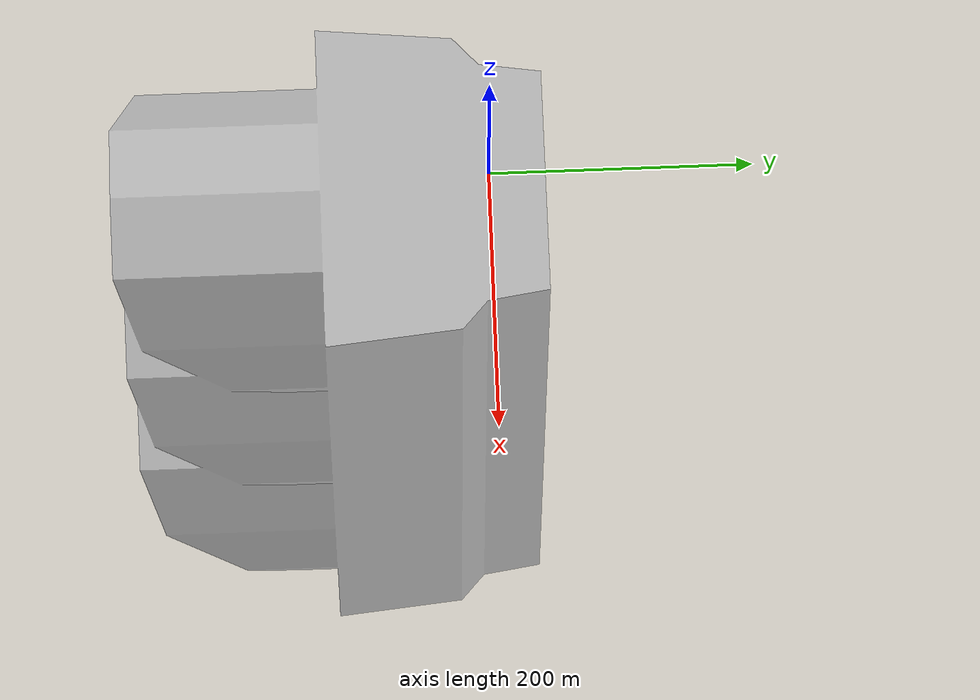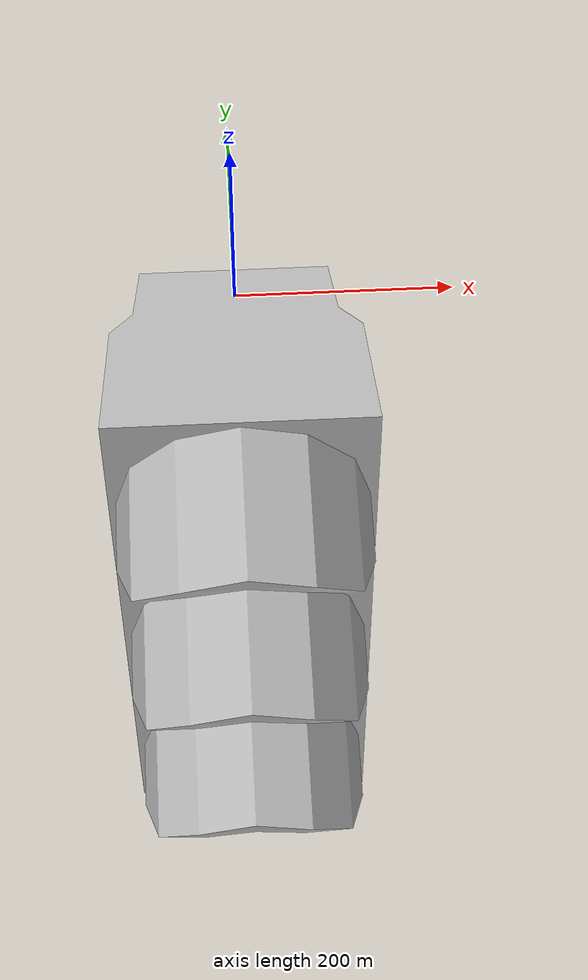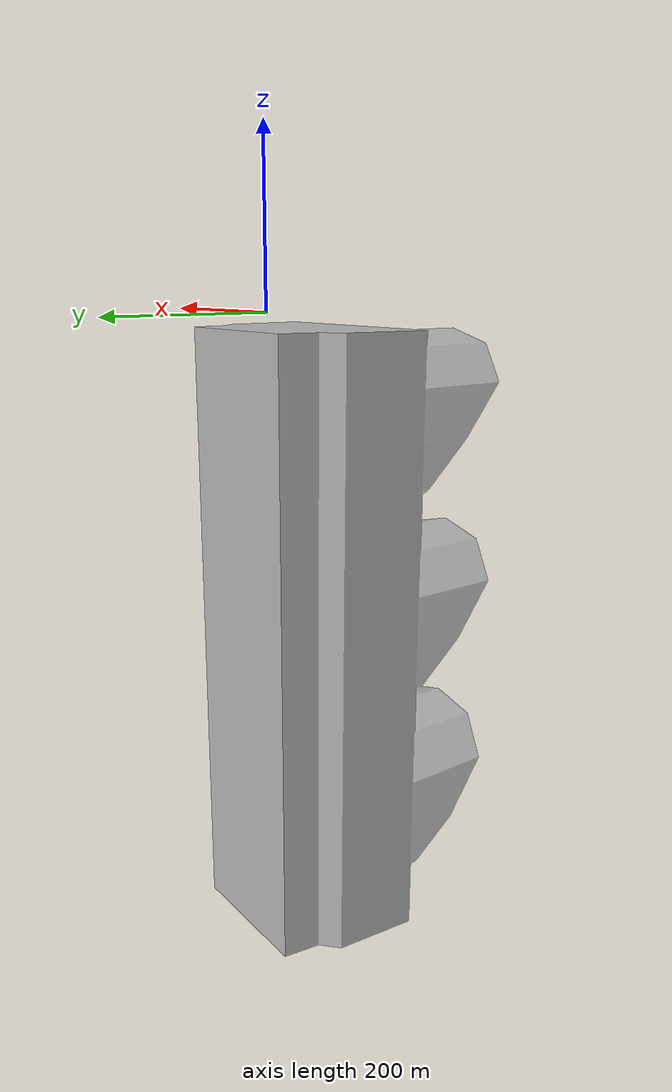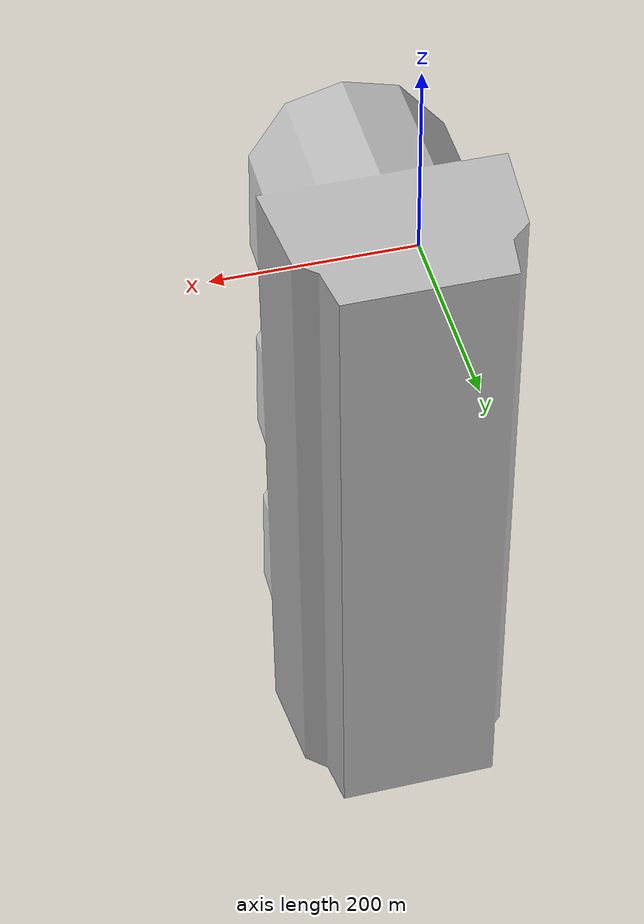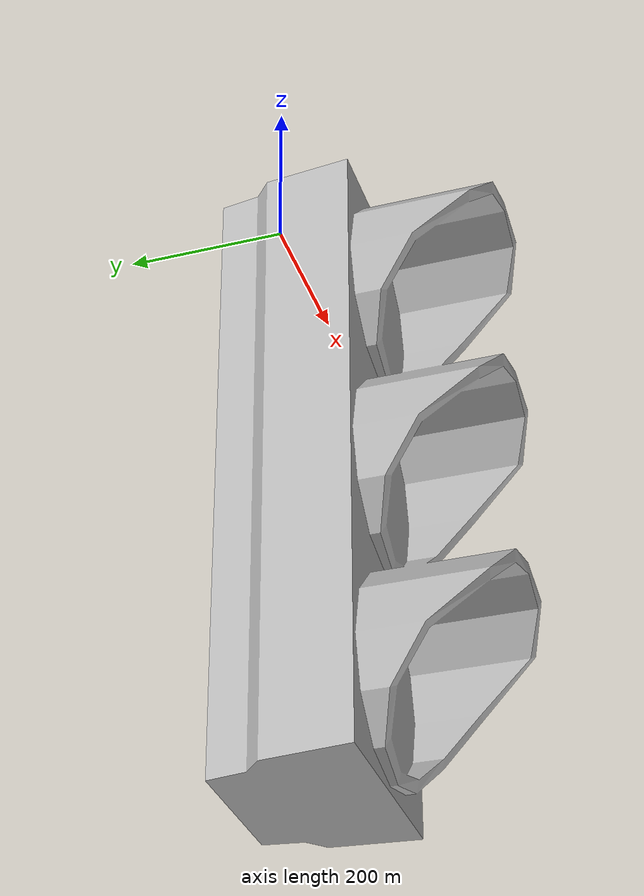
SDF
<?xml version="1.0" ?>
<sdf version="1.6">
  <model name="stop_light">

    <static>true</static>

    <!-- this pose can be overriden when including the light on another model -->
    <link name="link">
      <pose frame=''>0.14 -1 0.9 0 -0 0</pose>
      <collision name="collision">
        <geometry>
          <mesh>
            <uri>model://stop_light/meshes/stop_light.obj</uri>
            <scale>10.0 10.0 10.0</scale>
          </mesh>
        </geometry>
      </collision>

      <visual name="frame">
        <geometry>
          <mesh>
            <uri>model://stop_light/meshes/stop_light.obj</uri>
            <scale>10.0 10.0 10.0</scale>
          </mesh>
        </geometry>
      </visual>

      <visual name="red">
        <pose>-0.001123 -0.082251 -0.147514 0 0 0</pose>
        <geometry>
          <sphere>
            <radius>1.1012</radius>
          </sphere>
        </geometry>
        <material>
          <script>
            <uri>model://stop_light/materials/scripts/</uri>
            <uri>model://stop_light/materials/textures/</uri>
            <name>StopLight/Light</name>
          </script>
          <ambient>1 0 0 1</ambient>
          <specular>1 0 0 1</specular>
          <!-- Turn a light on by uncommenting emissive -->
          <emissive>1 0 0 1</emissive>
        </material>
      </visual>

      <visual name="yellow">
        <pose>-0.001123 -0.082251 -0.402 0 0 0</pose>
        <geometry>
          <sphere>
            <radius>0.1012</radius>
          </sphere>
        </geometry>
        <material>
          <script>
            <uri>model://stop_light/materials/scripts/</uri>
            <uri>model://stop_light/materials/textures/</uri>
            <name>StopLight/Light</name>
          </script>
          <ambient>1 1 0 1</ambient>
          <specular>1 1 0 1</specular>
        </material>
      </visual>

      <visual name="green">
        <pose>-0.001123 -0.082251 -0.655 0 0 0</pose>
        <geometry>
          <sphere>
            <radius>0.1012</radius>
          </sphere>
        </geometry>
        <material>
          <script>
            <uri>model://stop_light/materials/scripts/</uri>
            <uri>model://stop_light/materials/textures/</uri>
            <name>StopLight/Light</name>
          </script>
          <ambient>0 1 0 1</ambient>
          <specular>0 1 0 1</specular>
        </material>
      </visual>

    </link>
  </model>
</sdf>
